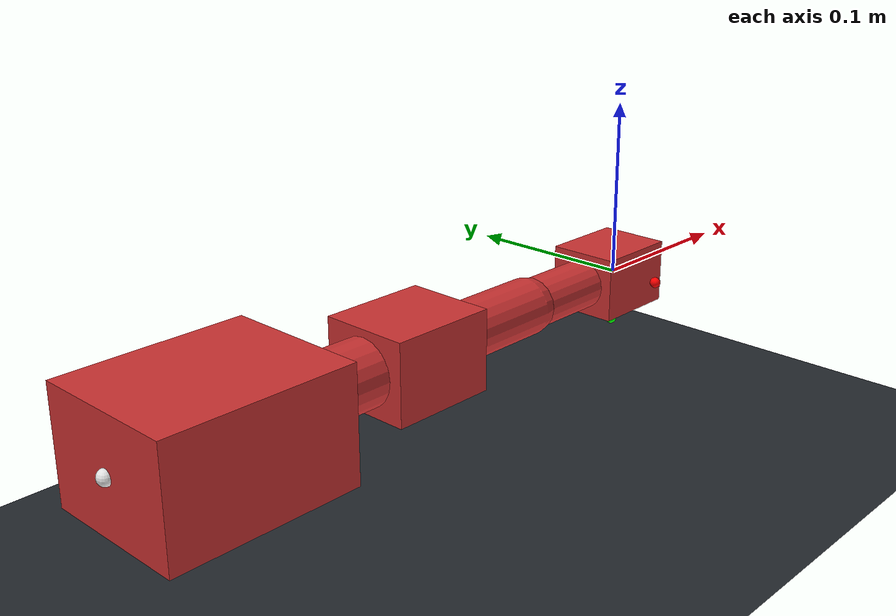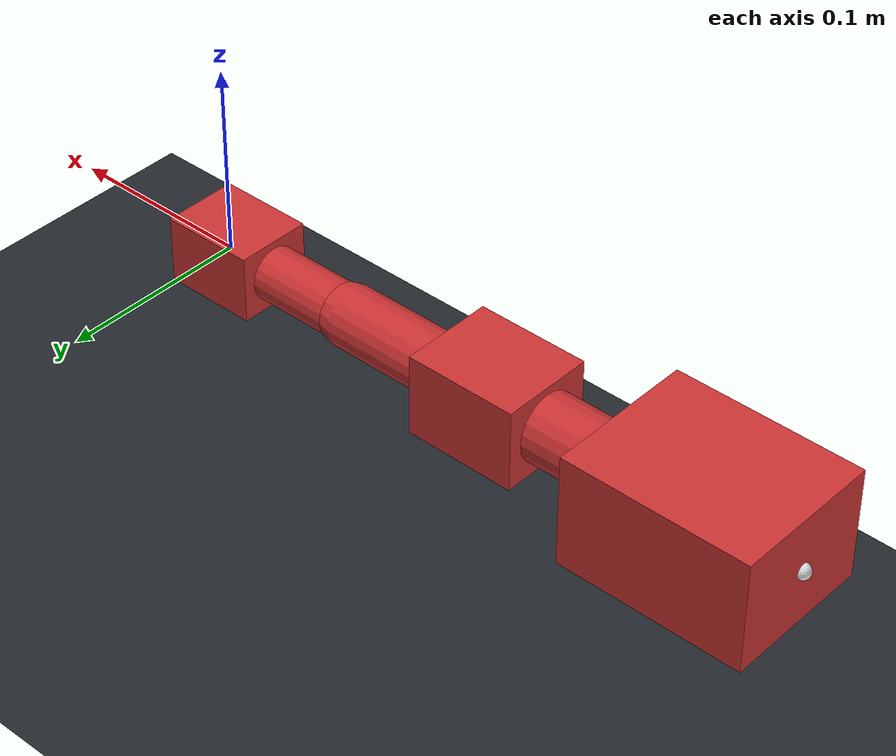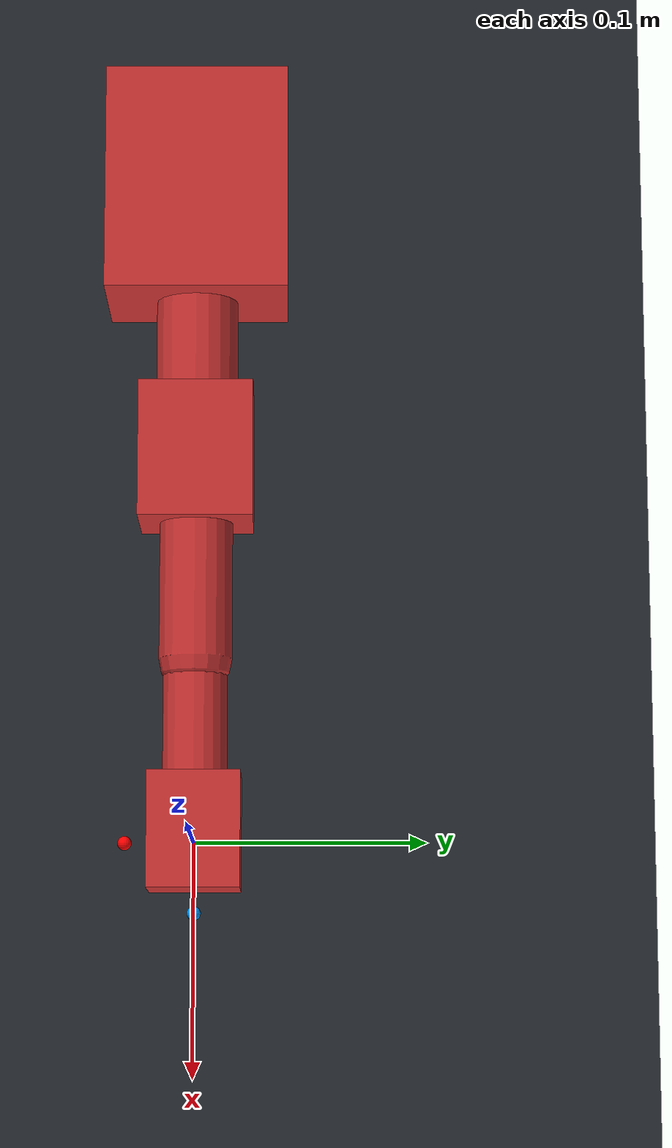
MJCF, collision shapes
<mujoco model="printed_arm_stage1_scene">
  <include file="robot.xml"/>

  <statistic extent="0.8" center="-0.17 0 0.03"/>

  <visual>
    <rgba haze="0.12 0.18 0.24 1"/>
    <global azimuth="150" elevation="-25"/>
  </visual>

  <asset>
    <texture type="skybox" builtin="gradient" rgb1="0.26 0.36 0.48" rgb2="0.03 0.05 0.08" width="512" height="3072"/>
    <texture type="2d" name="pa_groundplane" builtin="checker" rgb1="0.18 0.20 0.22" rgb2="0.10 0.12 0.14"
      width="512" height="512" mark="cross" markrgb="0.65 0.65 0.65"/>
    <material name="pa_groundplane" texture="pa_groundplane" texrepeat="4 4" texuniform="true" reflectance="0.15"/>
  </asset>

  <worldbody>
    <light name="pa_key_light" pos="0.4 -0.6 0.8" dir="-0.3 0.4 -1" directional="true"/>
    <light name="pa_fill_light" pos="-0.4 0.3 0.6"/>
    <geom name="pa_floor" type="plane" pos="0 0 -0.12" size="0 0 1" material="pa_groundplane"/>
    <camera name="pa_overview" pos="-0.05 -0.45 0.20" xyaxes="1 0 0 0 0.55 0.84"/>
  </worldbody>
</mujoco>

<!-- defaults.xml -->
<mujoco model="printed_arm_stage1_defaults">
  <default>
    <default class="pa_visual_mesh">
      <geom type="mesh" group="2" contype="0" conaffinity="0" rgba="0.22 0.23 0.25 1"/>
    </default>

    <default class="pa_collision_box">
      <geom type="box" group="3" density="650" friction="0.8 0.02 0.002" rgba="0.8 0.2 0.2 0.15"/>
    </default>

    <default class="pa_collision_capsule">
      <geom type="capsule" group="3" density="650" friction="0.8 0.02 0.002" rgba="0.8 0.2 0.2 0.15"/>
    </default>

    <default class="pa_hinge">
      <joint type="hinge" damping="0.35" armature="0.01" limited="true"/>
    </default>

    <default class="pa_slide">
      <joint type="slide" damping="1.0" armature="0.02" limited="true"/>
    </default>

    <default class="pa_position">
      <position kp="60" dampratio="1.0" forcerange="-40 40"/>
    </default>
  </default>
</mujoco>

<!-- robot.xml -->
<mujoco model="printed_arm_stage1_robot">
  <compiler angle="radian"/>

  <include file="defaults.xml"/>

  <asset>
    <material name="pa_dark" rgba="0.20 0.21 0.24 1" specular="0.3" shininess="0.2"/>
    <material name="pa_mid" rgba="0.46 0.49 0.52 1" specular="0.2" shininess="0.15"/>
    <material name="pa_mount" rgba="0.81 0.36 0.20 1" specular="0.4" shininess="0.3"/>

    <mesh name="pa_unit_box" file="assets/meshes/visual/unit_box.obj"/>
    <mesh name="pa_base_visual" file="assets/meshes/visual/pa_base.stl" scale="0.001 0.001 0.001"/>
    <mesh name="pa_link_long_visual" file="assets/meshes/visual/pa_j1_link.stl" scale="0.001 0.001 0.001"/>
    <mesh name="pa_link_mid_visual" file="assets/meshes/visual/unit_box.obj" scale="0.060 0.030 0.026"/>
    <mesh name="pa_j3_link_visual" file="assets/meshes/visual/pa_j3_link.stl" scale="0.001 0.001 0.001"/>
    <mesh name="pa_link_short_visual" file="assets/meshes/visual/unit_box.obj" scale="0.050 0.028 0.024"/>
    <mesh name="pa_j4_link_main_visual" file="assets/meshes/visual/pa_j4_link_main.stl" scale="0.001 0.001 0.001"/>
    <mesh name="pa_j4_link_aux_visual" file="assets/meshes/visual/pa_j4_link_aux.stl" scale="0.001 0.001 0.001"/>
    <mesh name="pa_j4_link_cover_visual" file="assets/meshes/visual/pa_j4_link_cover.stl" scale="0.001 0.001 0.001"/>
    <mesh name="pa_j5_rotating_output_candidate_visual" file="assets/meshes/visual/pa_j5_fixed.stl" scale="0.001 0.001 0.001"/>
    <mesh name="pa_j5_fixed_support_visual" file="assets/meshes/visual/pa_j5_fixed_support.stl" scale="0.001 0.001 0.001"/>
    <mesh name="pa_mount_visual" file="assets/meshes/visual/pa_ee_mount.stl" scale="0.001 0.001 0.001"/>
  </asset>

  <worldbody>
    <body name="pa_root" pos="-0.34 0 0">
      <site name="pa_base_origin" pos="0 0 0" size="0.004" rgba="0.9 0.9 0.9 1"/>
      <geom name="pa_base_visual_geom" class="pa_visual_mesh" mesh="pa_base_visual" material="pa_dark"
        pos="-0.581117 -0.066195 -1.289088"/>
      <geom name="pa_base_collision_geom" class="pa_collision_box" size="0.05 0.04 0.03" pos="0.05 0 0"/>

      <body name="pa_j1_link" pos="0.05 0 0">
        <joint name="pa_J1" class="pa_hinge" axis="0 0 1" range="-1.5708 1.5708"/>
        <geom name="pa_j1_visual_geom" class="pa_visual_mesh" mesh="pa_link_long_visual" material="pa_mid"
          pos="0.631176 0.066194 -1.289088" quat="0 0 0 1"/>
        <geom name="pa_j1_collision_geom" class="pa_collision_capsule" fromto="0 0 0 0.09 0 0" size="0.018"/>

        <body name="pa_j2_carriage" pos="0.09 0 0">
          <joint name="pa_J2" class="pa_slide" axis="1 0 0" range="0 0.08"/>
          <geom name="pa_j2_visual_geom" class="pa_visual_mesh" mesh="pa_link_mid_visual" material="pa_mid" pos="0.03 0 0"/>
          <geom name="pa_j2_collision_geom" class="pa_collision_box" size="0.03 0.025 0.022" pos="0.03 0 0"/>

          <body name="pa_j3_link" pos="0.06 0 0">
            <joint name="pa_J3" class="pa_hinge" axis="0 1 0" range="-1.0472 1.0472"/>
            <geom name="pa_j3_visual_geom" class="pa_visual_mesh" mesh="pa_j3_link_visual" material="pa_dark"
              pos="0.544517 0.073785 -1.290771" quat="0 0 0 1"/>
            <geom name="pa_j3_collision_geom" class="pa_collision_capsule" fromto="0 0 0 0.06 0 0" size="0.016"/>

            <body name="pa_j4_link" pos="0.06 0 0">
              <joint name="pa_J4" class="pa_hinge" axis="0 0 1" range="-1.22173 1.22173"/>
              <geom name="pa_j4_visual_geom" class="pa_visual_mesh" mesh="pa_j4_link_main_visual" material="pa_mid"
                pos="0.453779 0.070294 -1.295769" quat="0 0 0 1"/>
              <geom name="pa_j4_aux_visual_geom" class="pa_visual_mesh" mesh="pa_j4_link_aux_visual" material="pa_dark"
                pos="0.477679 0.072694 -1.292822" quat="0 0 0 1"/>
              <geom name="pa_j4_cover_visual_geom" class="pa_visual_mesh" mesh="pa_j4_link_cover_visual" material="pa_mid"
                pos="0.464439 0.072821 -1.290089" quat="0 0 0 1"/>
              <geom name="pa_j4_collision_geom" class="pa_collision_capsule" fromto="0 0 0 0.05 0 0" size="0.014"/>

              <body name="pa_j5_fixed" pos="0.05 0 0">
                <geom name="pa_j5_visual_geom" class="pa_visual_mesh" mesh="pa_j5_fixed_support_visual" material="pa_dark"
                  pos="-0.219294 -0.039144 -1.290664"/>
                <geom name="pa_j5_rotating_output_candidate_visual_geom" class="pa_visual_mesh"
                  mesh="pa_j5_rotating_output_candidate_visual" material="pa_mount" pos="-0.205556 -0.038908 -1.292929"/>
                <geom name="pa_j5_collision_geom" class="pa_collision_box" size="0.025 0.020 0.018" pos="0.025 0 0"/>

                <!-- Stage 1 mount frame: position and orientation are chosen to match Shadow's root body home pose. -->
                <body name="pa_ee_mount" pos="0.03 0 0" quat="1 -1 1 -1">
                  <site name="pa_ee_mount_site" pos="0 0 0" size="0.005" rgba="1 0.6 0.2 1"/>
                  <site name="pa_ee_axis_x" pos="0.03 0 0" size="0.003" rgba="1 0 0 1"/>
                  <site name="pa_ee_axis_y" pos="0 0.03 0" size="0.003" rgba="0 1 0 1"/>
                  <site name="pa_ee_axis_z" pos="0 0 0.03" size="0.003" rgba="0 0.6 1 1"/>
                  <geom name="pa_ee_mount_visual_geom" class="pa_visual_mesh" mesh="pa_mount_visual" material="pa_mount"
                    pos="0.038083 1.292871 -0.234842" quat="0.5 0.5 -0.5 0.5"/>
                </body>
              </body>
            </body>
          </body>
        </body>
      </body>
    </body>
  </worldbody>

  <actuator>
    <position name="pa_A_J1" joint="pa_J1" class="pa_position" ctrlrange="-1.5708 1.5708"/>
    <position name="pa_A_J2" joint="pa_J2" class="pa_position" kp="120" ctrlrange="0 0.08" forcerange="-80 80"/>
    <position name="pa_A_J3" joint="pa_J3" class="pa_position" ctrlrange="-1.0472 1.0472"/>
    <position name="pa_A_J4" joint="pa_J4" class="pa_position" ctrlrange="-1.22173 1.22173"/>
  </actuator>

  <keyframe>
    <key name="home" qpos="0 0 0 0" ctrl="0 0 0 0"/>
  </keyframe>
</mujoco>
